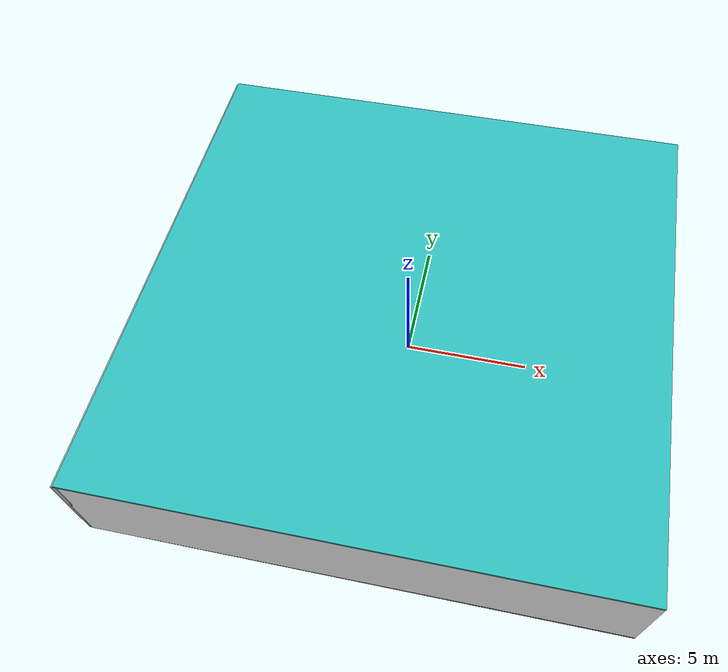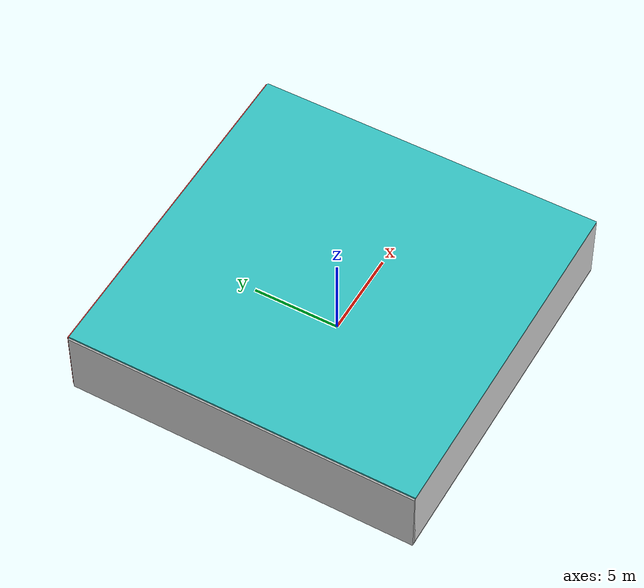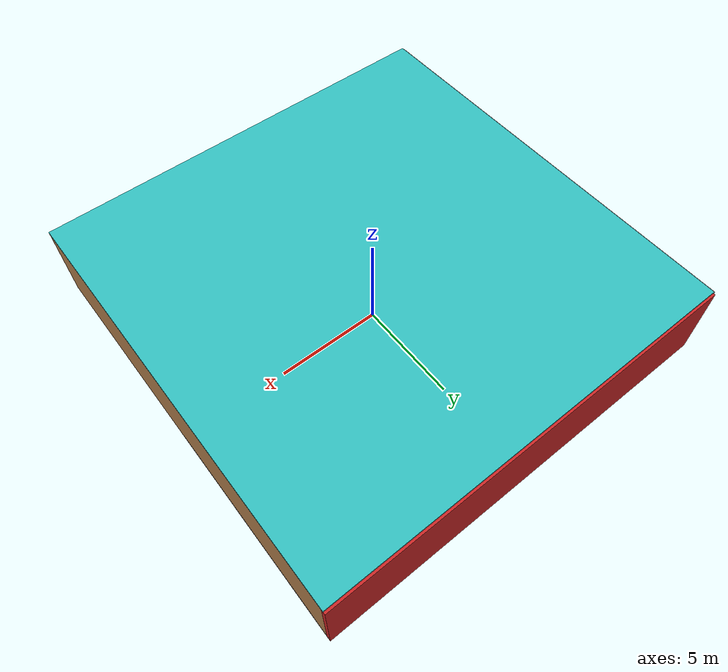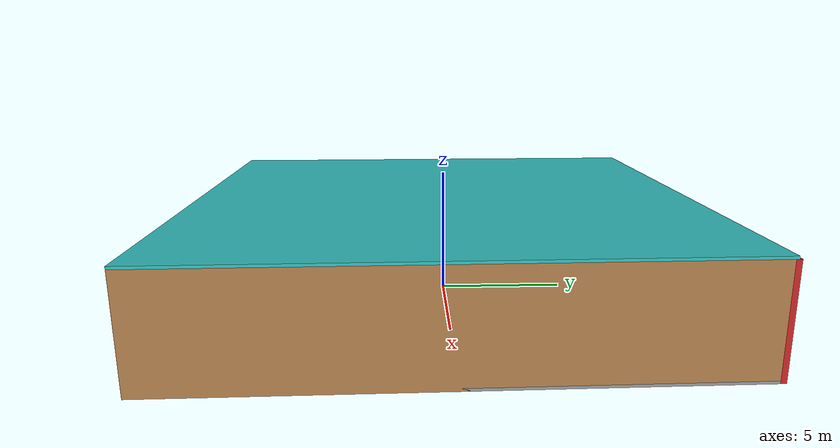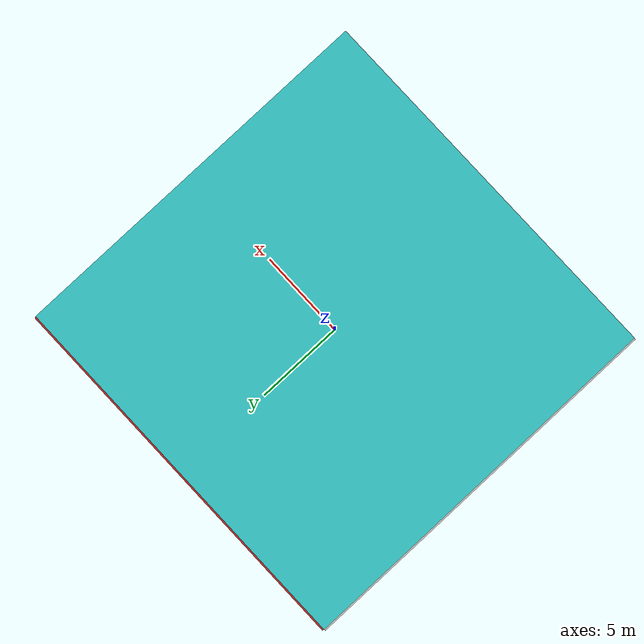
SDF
<sdf version="1.4">
 <world name="default">
  <physics type="ode">
   <max_step_size>0.001</max_step_size>
   <real_time_factor>1</real_time_factor>
   <real_time_update_rate>1000</real_time_update_rate>
   <gravity>0 0 -9.8</gravity>
  </physics>
  <scene><ambient>0.4 0.4 0.4 1</ambient><background>0.7 0.7 0.7 1</background><shadows>1</shadows></scene>
  <model name="Surrounding">
   <static>1</static>
   <link name="Ceiling">
    <collision name="Ceiling_Collision"><geometry><box><size>20 20 0.1</size></box></geometry></collision>
    <visual name="Ceiling_Visual">
     <geometry><box><size>20 20 0.1</size></box></geometry>
     <material>
      <script><uri>file://media/materials/scripts/gazebo.material</uri><name>Gazebo/TurquoiseGlow</name></script>
     </material>
    </visual>
    <pose>0 0 4.05 0 0 0</pose>
   </link>
   <link name="Wall_South">
    <collision name="Wall_South_Collision">
     <geometry><box><size>20 0 4</size></box></geometry>
     <pose>0 0 2 0 -0 0</pose>
    </collision>
    <visual name="Wall_South_Visual">
     <pose>0 0 2 0 -0 0</pose>
     <geometry><box><size>20 0 4</size></box></geometry>
     <material>
      <script><uri>file://media/materials/scripts/gazebo.material</uri><name>Gazebo/WhiteGlow</name></script>
     </material>
    </visual>
    <velocity_decay><linear>0</linear><angular>0</angular></velocity_decay>
    <pose>0 -10 0 0 -0 0</pose>
   </link>
   <link name="Wall_East">
    <collision name="Wall_21_Collision">
     <geometry><box><size>20 0 4</size></box></geometry>
     <pose>0 0 2 0 -0 0</pose>
    </collision>
    <visual name="Wall_21_Visual">
     <pose>0 0 2 0 -0 0</pose>
     <geometry><box><size>20 0 4</size></box></geometry>
     <material>
      <script><uri>file://media/materials/scripts/gazebo.material</uri><name>Gazebo/WoodFloor</name></script>
     </material>
    </visual>
    <velocity_decay><linear>0</linear><angular>0</angular></velocity_decay>
    <pose>10 0 0 0 -0 1.5708</pose>
   </link>
   <link name="Wall_North">
    <collision name="Wall_22_Collision">
     <geometry><box><size>20 0.2 4</size></box></geometry>
     <pose>0 0 2 0 -0 0</pose>
    </collision>
    <visual name="Wall_22_Visual">
     <pose>0 0 2 0 -0 0</pose>
     <geometry><box><size>20 0.2 4</size></box></geometry>
     <material>
      <script><uri>file://media/materials/scripts/gazebo.material</uri><name>Gazebo/RedBright</name></script>
     </material>
    </visual>
    <velocity_decay><linear>0</linear><angular>0</angular></velocity_decay>
    <pose>0 10 0 0 -0 0</pose>
   </link>
   <link name="Wall_West">
    <collision name="Wall_23_Collision">
     <geometry><box><size>20 0.2 4</size></box></geometry>
     <pose>0 0 2 0 -0 0</pose>
    </collision>
    <visual name="Wall_23_Visual">
     <pose>0 0 2 0 -0 0</pose>
     <geometry><box><size>20 0.2 4</size></box></geometry>
     <material>
      <script><uri>file://media/materials/scripts/gazebo.material</uri><name>Gazebo/Pioneer2Body</name></script>
     </material>
    </visual>
    <velocity_decay><linear>0</linear><angular>0</angular></velocity_decay>
    <pose>-10 0 0 0 0 -1.5708</pose>
   </link>
   <link name="Ground_link">
    <collision name="collision">
     <pose>0 0 .05 0 -0 0</pose>
     <geometry><box><size>20 20 0.1</size></box></geometry>
    </collision>
    <visual name="visual">
     <pose>0 0 .05 0 -0 0</pose>
     <geometry><box><size>20 20 0.1</size></box></geometry>
     <material>
      <script><uri>file://media/materials/scripts/gazebo.material</uri><name>Gazebo/GreyGradientSky</name></script>
     </material>
    </visual>
   </link>
   <static>1</static>
  </model>
  <spherical_coordinates>
   <surface_model>EARTH_WGS84</surface_model>
   <latitude_deg>0</latitude_deg>
   <longitude_deg>0</longitude_deg>
   <elevation>0</elevation>
   <heading_deg>0</heading_deg>
  </spherical_coordinates>
  <light name="lightball_0" type="diffuse">
   <diffuse>0.8 0.8 0.8 1</diffuse>
   <specular>0.2 0.2 0.2 1</specular>
   <attenuation>
    <range>100</range>
    <constant>0.7</constant>
    <linear>0.01</linear>
    <quadratic>0.001</quadratic>
   </attenuation>
   <direction>-0.5 0.1 -0.9</direction>
   <pose>5.90410432384 -4.01433233282 0.642066586476 0 0 0</pose>
  </light>
  <light name="lightball_1" type="diffuse">
   <diffuse>0.8 0.8 0.8 1</diffuse>
   <specular>0.2 0.2 0.2 1</specular>
   <attenuation>
    <range>100</range>
    <constant>0.7</constant>
    <linear>0.01</linear>
    <quadratic>0.001</quadratic>
   </attenuation>
   <direction>-0.5 0.1 -0.9</direction>
   <pose>0.420573909758 1.8745625201 2.16638538202 0 0 0</pose>
  </light>
  <include><uri>model://table</uri><pose>-7.58575755438 1.56504452282 0 0 0 1.01913276736</pose></include>
 </world>
</sdf>

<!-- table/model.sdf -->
<sdf version="1.5">
  <model name="table">
    <static>true</static>
    <link name="link">
      <collision name="surface">
        <pose>0 0 1.0 0 0 0</pose>
        <geometry>
          <box>
            <size>1.5 0.8 0.03</size>
          </box>
        </geometry>
        <surface>
          <friction>
            <ode>
              <mu>0.6</mu>
              <mu2>0.6</mu2>
            </ode>
          </friction>
        </surface>
      </collision>
      <visual name="visual1">
        <pose>0 0 1.0 0 0 0</pose>
        <geometry>
          <box>
            <size>1.5 0.8 0.03</size>
          </box>
        </geometry>
        <material>
          <script>
            <uri>model://media/materials/scripts/gazebo.material</uri>
            <name>Gazebo/Wood</name>
          </script>
        </material>
      </visual>
      <collision name="front_left_leg">
        <pose>0.68 0.38 0.5 0 0 0</pose>
        <geometry>
          <cylinder>
            <radius>0.02</radius>
            <length>1.0</length>
          </cylinder>
        </geometry>
      </collision>
      <visual name="front_left_leg">
        <pose>0.68 0.38 0.5 0 0 0</pose>
        <geometry>
          <cylinder>
            <radius>0.02</radius>
            <length>1.0</length>
          </cylinder>
        </geometry>
        <material>
          <script>
            <uri>model://media/materials/scripts/gazebo.material</uri>
            <name>Gazebo/Grey</name>
          </script>
        </material>
      </visual>
      <collision name="front_right_leg">
        <pose>0.68 -0.38 0.5 0 0 0</pose>
        <geometry>
          <cylinder>
            <radius>0.02</radius>
            <length>1.0</length>
          </cylinder>
        </geometry>
      </collision>
      <visual name="front_right_leg">
        <pose>0.68 -0.38 0.5 0 0 0</pose>
        <geometry>
          <cylinder>
            <radius>0.02</radius>
            <length>1.0</length>
          </cylinder>
        </geometry>
        <material>
          <script>
            <uri>model://media/materials/scripts/gazebo.material</uri>
            <name>Gazebo/Grey</name>
          </script>
        </material>
      </visual>
      <collision name="back_right_leg">
        <pose>-0.68 -0.38 0.5 0 0 0</pose>
        <geometry>
          <cylinder>
            <radius>0.02</radius>
            <length>1.0</length>
          </cylinder>
        </geometry>
      </collision>
      <visual name="back_right_leg">
        <pose>-0.68 -0.38 0.5 0 0 0</pose>
        <geometry>
          <cylinder>
            <radius>0.02</radius>
            <length>1.0</length>
          </cylinder>
        </geometry>
        <material>
          <script>
            <uri>model://media/materials/scripts/gazebo.material</uri>
            <name>Gazebo/Grey</name>
          </script>
        </material>
      </visual>
      <collision name="back_left_leg">
        <pose>-0.68 0.38 0.5 0 0 0</pose>
        <geometry>
          <cylinder>
            <radius>0.02</radius>
            <length>1.0</length>
          </cylinder>
        </geometry>
      </collision>
      <visual name="back_left_leg">
        <pose>-0.68 0.38 0.5 0 0 0</pose>
        <geometry>
          <cylinder>
            <radius>0.02</radius>
            <length>1.0</length>
          </cylinder>
        </geometry>
        <material>
          <script>
            <uri>model://media/materials/scripts/gazebo.material</uri>
            <name>Gazebo/Grey</name>
          </script>
        </material>
      </visual>
    </link>
  </model>
</sdf>
